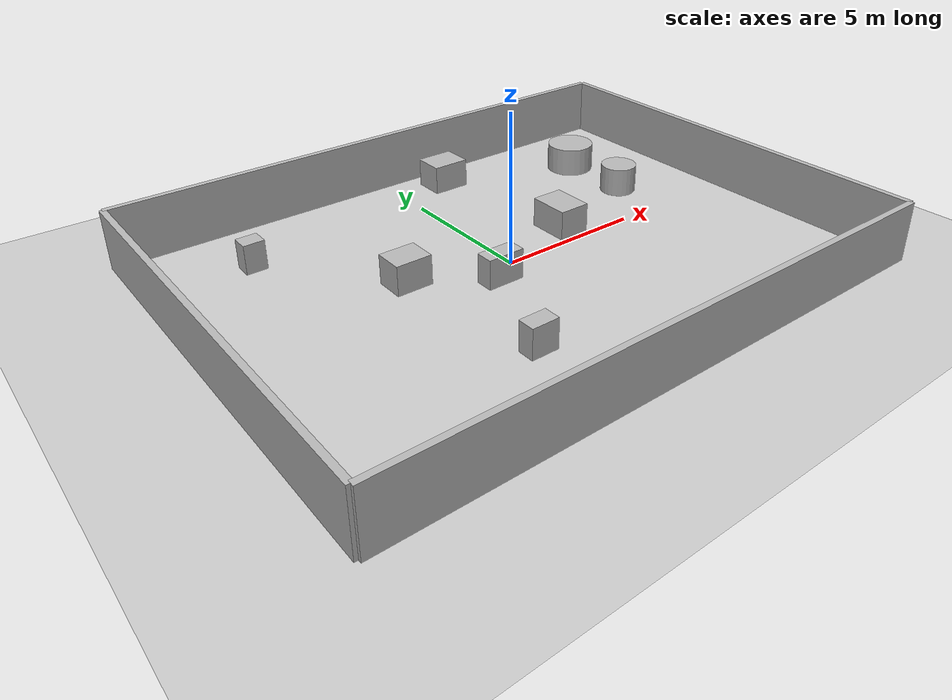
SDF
<?xml version="1.0"?>
<sdf version="1.6">
  <world name="env_47">

    <include><uri>model://ground_plane</uri></include>
    <include><uri>model://sun</uri></include>

    <!-- WALLS -->
    <model name="wall_north"><static>true</static><pose>0 7.442968060931755 1 0 0 0</pose>
      <link name="link"><collision name="collision">
        <geometry><box><size>19.572385618534877 0.2 2</size></box></geometry>
      </collision><visual name="visual">
        <geometry><box><size>19.572385618534877 0.2 2</size></box></geometry>
      </visual></link>
    </model>

    <model name="wall_south"><static>true</static><pose>0 -7.442968060931755 1 0 0 0</pose>
      <link name="link"><collision name="collision">
        <geometry><box><size>19.572385618534877 0.2 2</size></box></geometry>
      </collision><visual name="visual">
        <geometry><box><size>19.572385618534877 0.2 2</size></box></geometry>
      </visual></link>
    </model>

    <model name="wall_east"><static>true</static><pose>9.786192809267439 0 1 0 0 1.57</pose>
      <link name="link"><collision name="collision">
        <geometry><box><size>14.88593612186351 0.2 2</size></box></geometry>
      </collision><visual name="visual">
        <geometry><box><size>14.88593612186351 0.2 2</size></box></geometry>
      </visual></link>
    </model>

    <model name="wall_west"><static>true</static><pose>-9.786192809267439 0 1 0 0 1.57</pose>
      <link name="link"><collision name="collision">
        <geometry><box><size>14.88593612186351 0.2 2</size></box></geometry>
      </collision><visual name="visual">
        <geometry><box><size>14.88593612186351 0.2 2</size></box></geometry>
      </visual></link>
    </model>

    <!-- SENSOR -->

    <model name="lidar_sensor">
      <static>true</static>
      <pose>-6.993562334074431 -6.426280586422113 0.4 0 0 0</pose>
      <link name="link">
        <sensor name="lidar" type="ray">
          <pose>0 0 0 0 0 0</pose>
          <visualize>true</visualize>
          <always_on>true</always_on>
          <update_rate>10</update_rate>
          <ray>
            <scan><horizontal>
              <samples>240</samples>
              <resolution>1</resolution>
              <min_angle>-3.14159</min_angle>
              <max_angle>3.14159</max_angle>
            </horizontal></scan>
            <range><min>0.15</min><max>20.0</max><resolution>0.01</resolution></range>
          </ray>
          <plugin name="lidar_plugin" filename="liblidar_plugin.so"/>
        </sensor>
      </link>
    </model>

    <!-- OBSTACLES -->

    <model name="obstacle_0">
      <static>true</static>
      <pose>6.564851762134575 1.9249010553391228 0.5 0 0 0</pose>
      <link name="link">
        <collision name="collision">
          <geometry><cylinder><radius>0.63</radius><length>1.0</length></cylinder></geometry>
        </collision>
        <visual name="visual">
          <geometry><cylinder><radius>0.63</radius><length>1.0</length></cylinder></geometry>
        </visual>
      </link>
    </model>

    <model name="obstacle_1">
      <static>true</static>
      <pose>1.7919209915295689 6.23733058546819 0.5 0 0 0</pose>
      <link name="link">
        <collision name="collision">
          <geometry><box><size>1.31 1.07 1.0</size></box></geometry>
        </collision>
        <visual name="visual">
          <geometry><box><size>1.31 1.07 1.0</size></box></geometry>
        </visual>
      </link>
    </model>

    <model name="obstacle_2">
      <static>true</static>
      <pose>2.835991352955345 0.8817387048666312 0.5 0 0 0</pose>
      <link name="link">
        <collision name="collision">
          <geometry><box><size>1.1 1.42 1.0</size></box></geometry>
        </collision>
        <visual name="visual">
          <geometry><box><size>1.1 1.42 1.0</size></box></geometry>
        </visual>
      </link>
    </model>

    <model name="obstacle_3">
      <static>true</static>
      <pose>-2.3656659458666818 -4.160365515265016 0.5 0 0 0</pose>
      <link name="link">
        <collision name="collision">
          <geometry><box><size>0.92 0.58 1.0</size></box></geometry>
        </collision>
        <visual name="visual">
          <geometry><box><size>0.92 0.58 1.0</size></box></geometry>
        </visual>
      </link>
    </model>

    <model name="obstacle_4">
      <static>true</static>
      <pose>-0.874174813009418 -0.6096967718096931 0.5 0 0 0</pose>
      <link name="link">
        <collision name="collision">
          <geometry><box><size>1.26 0.6 1.0</size></box></geometry>
        </collision>
        <visual name="visual">
          <geometry><box><size>1.26 0.6 1.0</size></box></geometry>
        </visual>
      </link>
    </model>

    <model name="obstacle_5">
      <static>true</static>
      <pose>-6.422174665291898 4.750002394742594 0.5 0 0 0</pose>
      <link name="link">
        <collision name="collision">
          <geometry><box><size>0.7 0.6 1.0</size></box></geometry>
        </collision>
        <visual name="visual">
          <geometry><box><size>0.7 0.6 1.0</size></box></geometry>
        </visual>
      </link>
    </model>

    <model name="obstacle_6">
      <static>true</static>
      <pose>-3.222957590127356 0.9817127843310747 0.5 0 0 0</pose>
      <link name="link">
        <collision name="collision">
          <geometry><box><size>1.22 0.99 1.0</size></box></geometry>
        </collision>
        <visual name="visual">
          <geometry><box><size>1.22 0.99 1.0</size></box></geometry>
        </visual>
      </link>
    </model>

    <model name="obstacle_7">
      <static>true</static>
      <pose>6.569158706835266 4.551740163881392 0.5 0 0 0</pose>
      <link name="link">
        <collision name="collision">
          <geometry><cylinder><radius>0.84</radius><length>1.0</length></cylinder></geometry>
        </collision>
        <visual name="visual">
          <geometry><cylinder><radius>0.84</radius><length>1.0</length></cylinder></geometry>
        </visual>
      </link>
    </model>

  </world>
</sdf>
